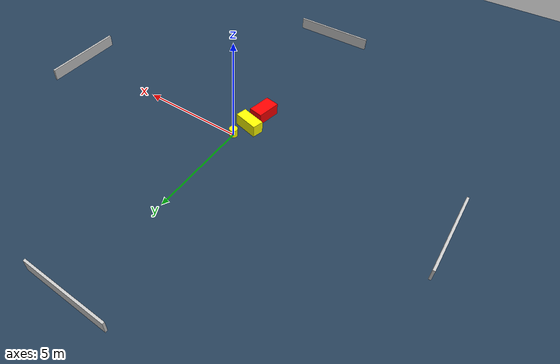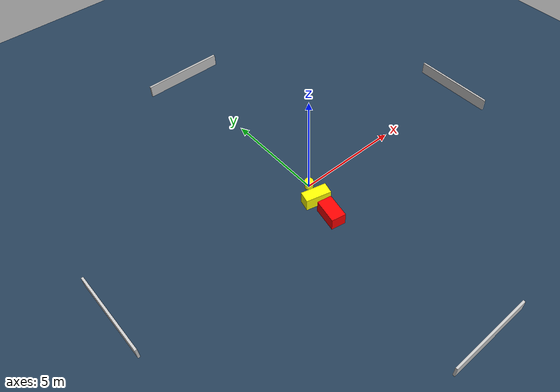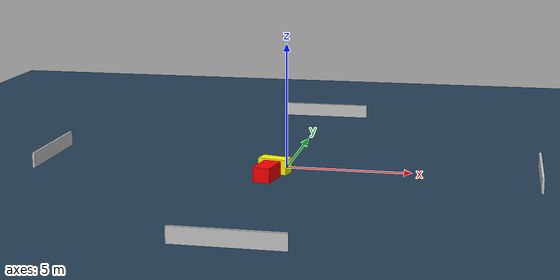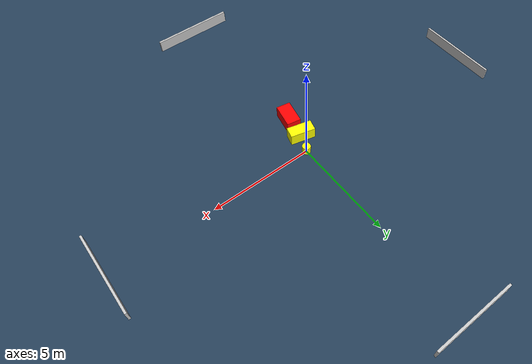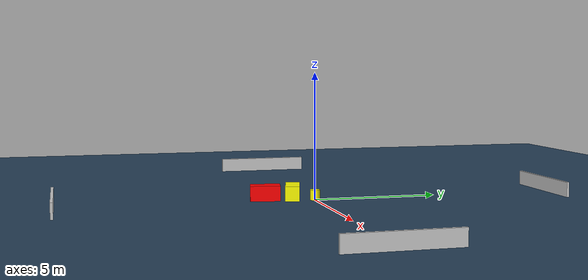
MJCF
<?xml version="1.0" ?>
<mujoco model="generated_environment">
  <option timestep="0.01" integrator="RK4" cone="elliptic"/>
  <default>
    <geom density="1"/>
  </default>
  <asset>
    <texture builtin="gradient" height="3072" name="skybox" rgb1="0.3 0.5 0.7" rgb2="0 0 0" type="skybox" width="512"/>
    <texture builtin="checker" height="300" name="groundplane" rgb1="0.2 0.3 0.4" rgb2="0.1 0.2 0.3" type="2d" width="300"/>
    <material name="groundplane" reflectance="0.2" texrepeat="5 5" texture="groundplane"/>
  </asset>
  <worldbody>
    <light dir="0 0 -1" directional="true" pos="0 0 1.5"/>
    <geom condim="3" friction="0.5 0.005 0.001" material="groundplane" name="floor" pos="0 0 0" size="0 0 0.05" type="plane"/>
    <body name="walls">
      <geom name="wall_1" condim="4" pos="-10.0 0.0 0.3" rgba="0.800000011920929 0.800000011920929 0.800000011920929 1.0" size="0.05 2.0 0.3" type="box"/>
      <geom name="wall_2" condim="4" pos="10.0 0.0 0.3" rgba="0.800000011920929 0.800000011920929 0.800000011920929 1.0" size="0.05 2.0 0.3" type="box"/>
      <geom name="wall_3" condim="4" pos="0.0 -10.0 0.3" rgba="0.800000011920929 0.800000011920929 0.800000011920929 1.0" size="2.0 0.05 0.3" type="box"/>
      <geom name="wall_4" condim="4" pos="0.0 10.0 0.3" rgba="0.800000011920929 0.800000011920929 0.800000011920929 1.0" size="2.0 0.05 0.3" type="box"/>
    </body>
    <body name="robot">
      <joint name="joint_x" type="slide" pos="0 0 0" axis="1 0 0"/>
      <joint name="joint_y" type="slide" pos="0 0 0" axis="0 1 0"/>
      <geom name="robot" type="cylinder" pos="0.0 0.0 0.2" size="0.2 0.2 0.0" mass="5.0" friction="1.0 0.005 0.0001" condim="4" rgba="1.0 1.0 0.0 1.0"/>
    </body>
    <body name="obstacle_1_movable">
      <geom name="obstacle_1_movable" condim="4" pos="-0.3242099266037609 -0.8320011306356812 0.3" euler="0 0 345.86257476349766" friction="0.0 0.005 0.001" rgba="1.0 1.0 0.0 1.0" size="0.5984622182665555 0.27758625780958673 0.3" type="box" mass="0.1"/>
      <joint type="free"/>
    </body>
    <body name="obstacle_2_static">
      <geom name="obstacle_2_static" condim="4" pos="-0.42024813684730883 -1.9168548459367252 0.3" euler="0 0 349.52516984584645" friction="0.0 0.005 0.001" rgba="1.0 0.0 0.0 1.0" size="0.3403644944865811 0.5870553757822414 0.3" type="box"/>
    </body>
  </worldbody>
  <actuator>
    <motor name="actuator_x" joint="joint_x" gear="1" ctrlrange="-1 1"/>
    <motor name="actuator_y" joint="joint_y" gear="1" ctrlrange="-1 1"/>
  </actuator>
</mujoco>
